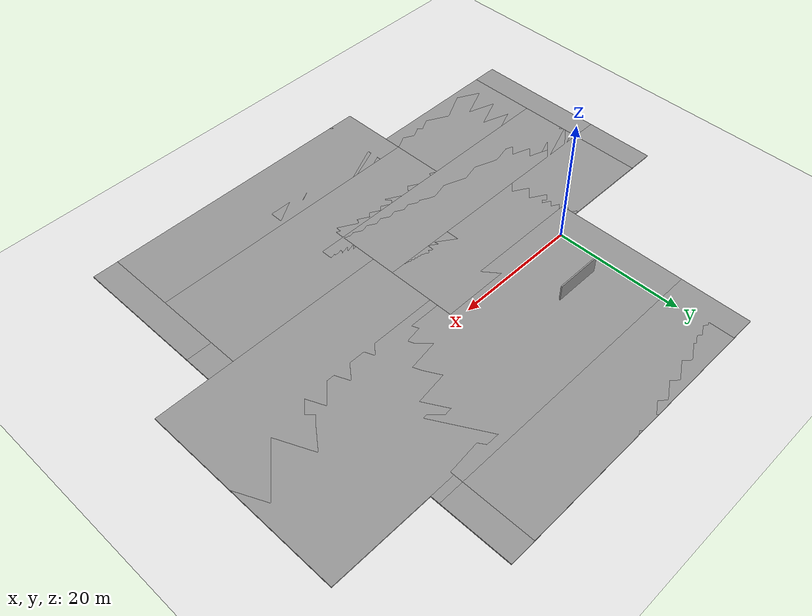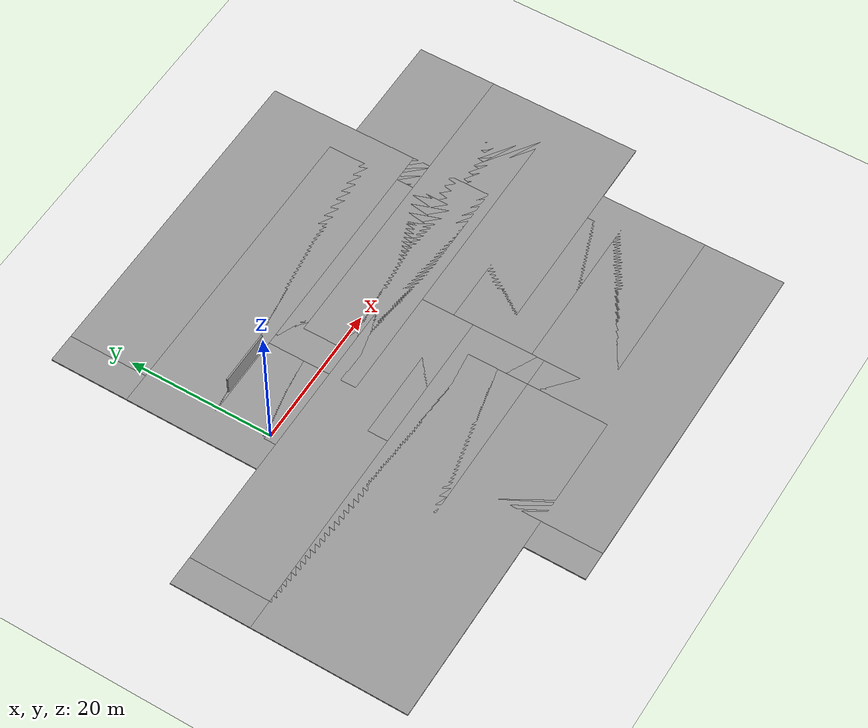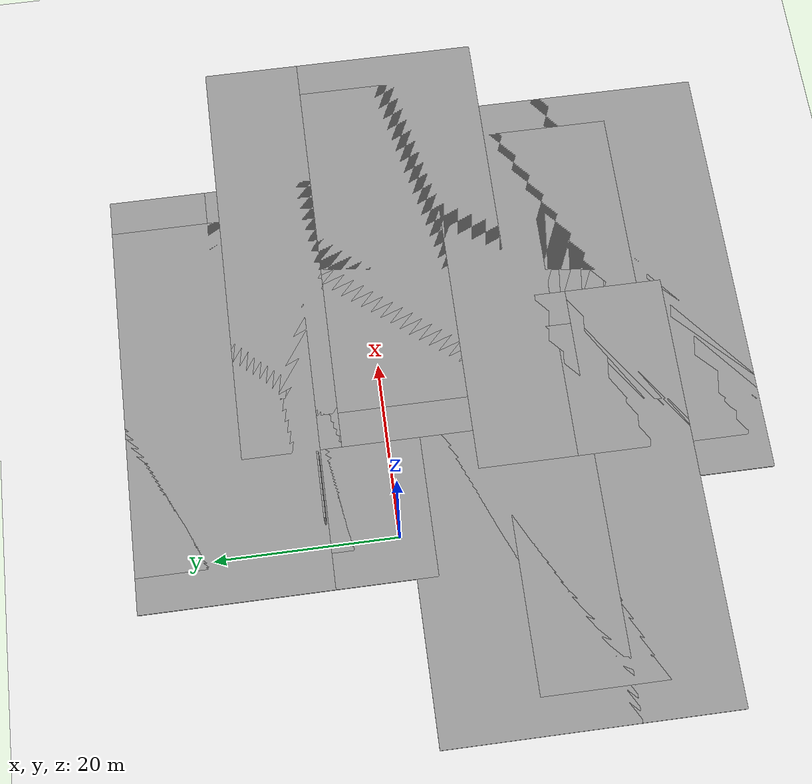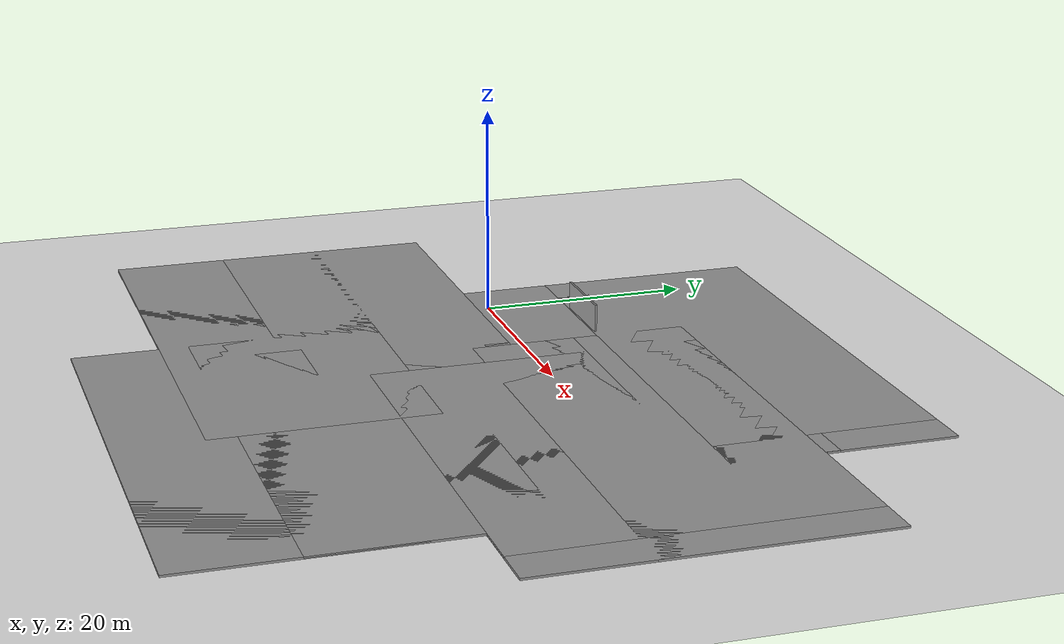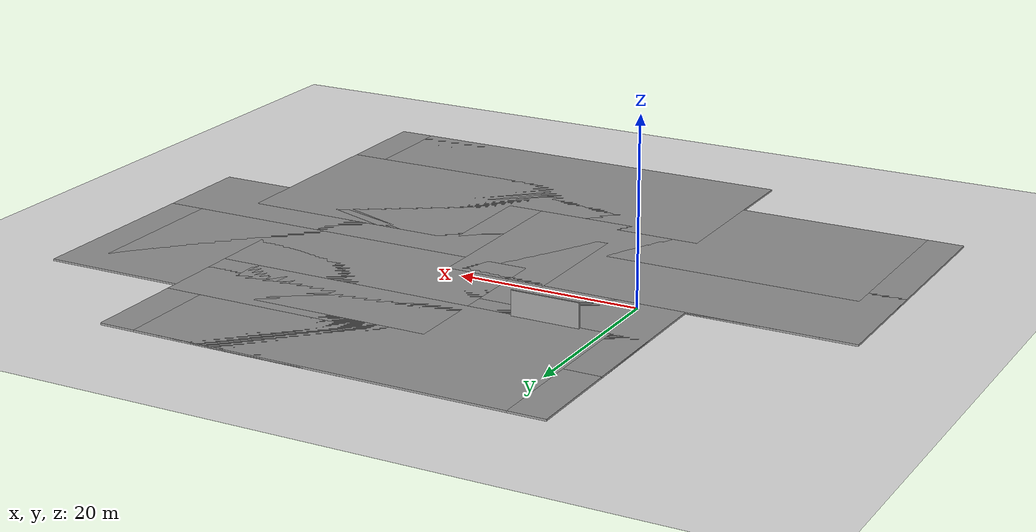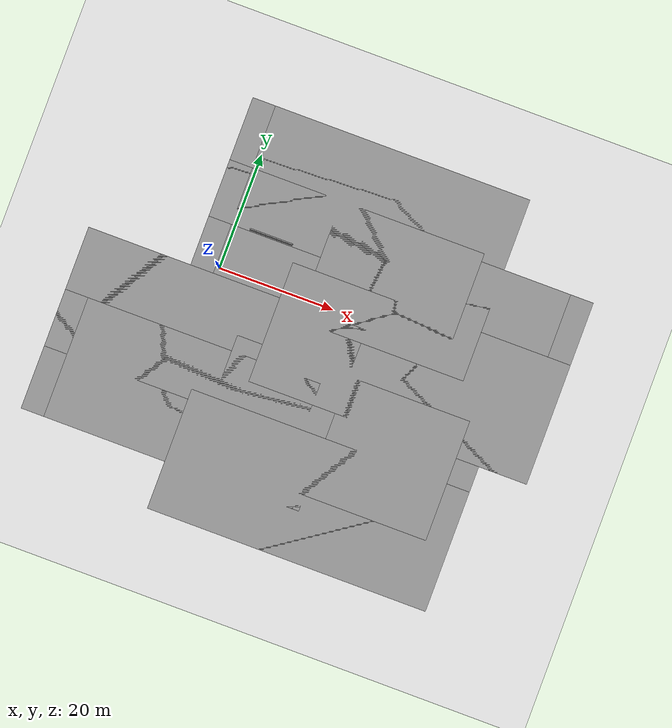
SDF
<sdf version="1.6">
 <world name="default">
  <model name="ground_plane">
   <static>1</static>
   <link name="link">
    <collision name="collision">
     <geometry><plane><normal>0 0 1</normal><size>100 100</size></plane></geometry>
     <surface><friction><ode><mu>100</mu><mu2>50</mu2></ode></friction></surface>
    </collision>
    <visual name="visual">
     <cast_shadows>0</cast_shadows>
     <geometry><plane><normal>0 0 1</normal><size>100 100</size></plane></geometry>
     <material>
      <script><uri>file://media/materials/scripts/gazebo.material</uri><name>Gazebo/White</name></script>
     </material>
    </visual>
    <velocity_decay><linear>0</linear><angular>0</angular></velocity_decay>
   </link>
  </model>
  <model name="grey_wall">
   <static>1</static>
   <link name="link">
    <pose>0 0 1.4 0 -0 0</pose>
    <collision name="collision"><geometry><box><size>7.5 0.2 2.8</size></box></geometry></collision>
    <visual name="visual">
     <cast_shadows>0</cast_shadows>
     <geometry><box><size>7.5 0.2 2.8</size></box></geometry>
     <material>
      <script>
       <uri>model://grey_wall/materials/scripts</uri>
       <uri>model://grey_wall/materials/textures</uri>
       <name>vrc/grey_wall</name>
      </script>
     </material>
    </visual>
    <velocity_decay><linear>0</linear><angular>0</angular></velocity_decay>
   </link>
   <pose>6.26548 7.71769 0 0 -0 0</pose>
  </model>
  <model name="ground_plane2_clone">
   <link name="link">
    <inertial>
     <mass>1</mass>
     <inertia><ixx>1</ixx><ixy>0</ixy><ixz>0</ixz><iyy>1</iyy><iyz>0</iyz><izz>1</izz></inertia>
    </inertial>
    <visual name="visual_1">
     <pose>-2 5.5 0 0 -0 0</pose>
     <cast_shadows>0</cast_shadows>
     <geometry><box><size>45 21 0.2</size></box></geometry>
     <material>
      <script>
       <uri>file://media/materials/scripts/gazebo.material</uri>
       <name>Gazebo/Gray</name>
       <name>vrc/mud</name>
      </script>
      <shader type="pixel"><normal_map>__default__</normal_map></shader>
      <ambient>0.5 0.5 0.5 1</ambient>
      <diffuse>0.5 0.5 0.5 1</diffuse>
      <specular>0.2 0.2 0.2 1</specular>
      <emissive>0 0 0 1</emissive>
     </material>
    </visual>
    <visual name="visual_3">
     <pose>2 -5.5 0 0 -0 0</pose>
     <cast_shadows>0</cast_shadows>
     <geometry><box><size>45 21 0.2</size></box></geometry>
     <material>
      <script>
       <uri>file://media/materials/scripts/gazebo.material</uri>
       <name>Gazebo/Gray</name>
       <name>vrc/mud</name>
      </script>
      <shader type="pixel"><normal_map>__default__</normal_map></shader>
      <ambient>0.5 0.5 0.5 1</ambient>
      <diffuse>0.5 0.5 0.5 1</diffuse>
      <specular>0.2 0.2 0.2 1</specular>
      <emissive>0 0 0 1</emissive>
     </material>
    </visual>
    <visual name="visual_2">
     <pose>2 5.5 0 0 -0 0</pose>
     <cast_shadows>0</cast_shadows>
     <geometry><box><size>45 21 0.2</size></box></geometry>
     <material>
      <script>
       <uri>file://media/materials/scripts/gazebo.material</uri>
       <name>Gazebo/Gray</name>
       <name>vrc/mud</name>
      </script>
      <shader type="pixel"><normal_map>__default__</normal_map></shader>
      <ambient>0.5 0.5 0.5 1</ambient>
      <diffuse>0.5 0.5 0.5 1</diffuse>
      <specular>0.2 0.2 0.2 1</specular>
      <emissive>0 0 0 1</emissive>
     </material>
    </visual>
    <visual name="visual_4">
     <pose>-2 -5.5 0 0 -0 0</pose>
     <cast_shadows>0</cast_shadows>
     <geometry><box><size>45 21 0.2</size></box></geometry>
     <material>
      <script>
       <uri>file://media/materials/scripts/gazebo.material</uri>
       <name>Gazebo/Gray</name>
       <name>vrc/mud</name>
      </script>
      <shader type="pixel"><normal_map>__default__</normal_map></shader>
      <ambient>0.5 0.5 0.5 1</ambient>
      <diffuse>0.5 0.5 0.5 1</diffuse>
      <specular>0.2 0.2 0.2 1</specular>
      <emissive>0 0 0 1</emissive>
     </material>
    </visual>
    <collision name="collision">
     <pose>0 0.2 0 0 -0 0</pose>
     <geometry><box><size>49 32 0.2</size></box></geometry>
     <surface>
      <friction>
       <ode><mu>1</mu><mu2>1</mu2><fdir1>0 0 0</fdir1><slip1>0</slip1><slip2>0</slip2></ode>
       <torsional>
        <coefficient>1</coefficient>
        <patch_radius>0</patch_radius>
        <surface_radius>0</surface_radius>
        <use_patch_radius>1</use_patch_radius>
        <ode><slip>0</slip></ode>
       </torsional>
      </friction>
      <bounce><restitution_coefficient>0</restitution_coefficient><threshold>1e+06</threshold></bounce>
      <contact>
       <collide_without_contact>0</collide_without_contact>
       <collide_without_contact_bitmask>1</collide_without_contact_bitmask>
       <collide_bitmask>1</collide_bitmask>
       <ode>
        <soft_cfm>0</soft_cfm>
        <soft_erp>0.2</soft_erp>
        <kp>1e+13</kp>
        <kd>1</kd>
        <max_vel>0.01</max_vel>
        <min_depth>0</min_depth>
       </ode>
       <bullet>
        <split_impulse>1</split_impulse>
        <split_impulse_penetration_threshold>-0.01</split_impulse_penetration_threshold>
        <soft_cfm>0</soft_cfm>
        <soft_erp>0.2</soft_erp>
        <kp>1e+13</kp>
        <kd>1</kd>
       </bullet>
      </contact>
     </surface>
    </collision>
   </link>
   <static>1</static>
   <pose>35.5273 0.081065 0.01 0 -0 0</pose>
  </model>
  <model name="ground_plane2_clone_0">
   <link name="link">
    <inertial>
     <mass>1</mass>
     <inertia><ixx>1</ixx><ixy>0</ixy><ixz>0</ixz><iyy>1</iyy><iyz>0</iyz><izz>1</izz></inertia>
    </inertial>
    <visual name="visual_1">
     <pose>-2 5.5 0 0 -0 0</pose>
     <cast_shadows>0</cast_shadows>
     <geometry><box><size>45 21 0.2</size></box></geometry>
     <material>
      <script>
       <uri>file://media/materials/scripts/gazebo.material</uri>
       <name>Gazebo/Gray</name>
       <name>vrc/mud</name>
      </script>
      <shader type="pixel"><normal_map>__default__</normal_map></shader>
      <ambient>0.5 0.5 0.5 1</ambient>
      <diffuse>0.5 0.5 0.5 1</diffuse>
      <specular>0.2 0.2 0.2 1</specular>
      <emissive>0 0 0 1</emissive>
     </material>
    </visual>
    <visual name="visual_3">
     <pose>2 -5.5 0 0 -0 0</pose>
     <cast_shadows>0</cast_shadows>
     <geometry><box><size>45 21 0.2</size></box></geometry>
     <material>
      <script>
       <uri>file://media/materials/scripts/gazebo.material</uri>
       <name>Gazebo/Gray</name>
       <name>vrc/mud</name>
      </script>
      <shader type="pixel"><normal_map>__default__</normal_map></shader>
      <ambient>0.5 0.5 0.5 1</ambient>
      <diffuse>0.5 0.5 0.5 1</diffuse>
      <specular>0.2 0.2 0.2 1</specular>
      <emissive>0 0 0 1</emissive>
     </material>
    </visual>
    <visual name="visual_2">
     <pose>2 5.5 0 0 -0 0</pose>
     <cast_shadows>0</cast_shadows>
     <geometry><box><size>45 21 0.2</size></box></geometry>
     <material>
      <script>
       <uri>file://media/materials/scripts/gazebo.material</uri>
       <name>Gazebo/Gray</name>
       <name>vrc/mud</name>
      </script>
      <shader type="pixel"><normal_map>__default__</normal_map></shader>
      <ambient>0.5 0.5 0.5 1</ambient>
      <diffuse>0.5 0.5 0.5 1</diffuse>
      <specular>0.2 0.2 0.2 1</specular>
      <emissive>0 0 0 1</emissive>
     </material>
    </visual>
    <visual name="visual_4">
     <pose>-2 -5.5 0 0 -0 0</pose>
     <cast_shadows>0</cast_shadows>
     <geometry><box><size>45 21 0.2</size></box></geometry>
     <material>
      <script>
       <uri>file://media/materials/scripts/gazebo.material</uri>
       <name>Gazebo/Gray</name>
       <name>vrc/mud</name>
      </script>
      <shader type="pixel"><normal_map>__default__</normal_map></shader>
      <ambient>0.5 0.5 0.5 1</ambient>
      <diffuse>0.5 0.5 0.5 1</diffuse>
      <specular>0.2 0.2 0.2 1</specular>
      <emissive>0 0 0 1</emissive>
     </material>
    </visual>
    <collision name="collision">
     <pose>0 0.2 0 0 -0 0</pose>
     <geometry><box><size>49 32 0.2</size></box></geometry>
     <surface>
      <friction>
       <ode><mu>1</mu><mu2>1</mu2><fdir1>0 0 0</fdir1><slip1>0</slip1><slip2>0</slip2></ode>
       <torsional>
        <coefficient>1</coefficient>
        <patch_radius>0</patch_radius>
        <surface_radius>0</surface_radius>
        <use_patch_radius>1</use_patch_radius>
        <ode><slip>0</slip></ode>
       </torsional>
      </friction>
      <bounce><restitution_coefficient>0</restitution_coefficient><threshold>1e+06</threshold></bounce>
      <contact>
       <collide_without_contact>0</collide_without_contact>
       <collide_without_contact_bitmask>1</collide_without_contact_bitmask>
       <collide_bitmask>1</collide_bitmask>
       <ode>
        <soft_cfm>0</soft_cfm>
        <soft_erp>0.2</soft_erp>
        <kp>1e+13</kp>
        <kd>1</kd>
        <max_vel>0.01</max_vel>
        <min_depth>0</min_depth>
       </ode>
       <bullet>
        <split_impulse>1</split_impulse>
        <split_impulse_penetration_threshold>-0.01</split_impulse_penetration_threshold>
        <soft_cfm>0</soft_cfm>
        <soft_erp>0.2</soft_erp>
        <kp>1e+13</kp>
        <kd>1</kd>
       </bullet>
      </contact>
     </surface>
    </collision>
   </link>
   <static>1</static>
   <pose>1.75668 -17.1641 0.01 0 -0 0</pose>
  </model>
  <model name="ground_plane2_clone_3">
   <link name="link">
    <inertial>
     <mass>1</mass>
     <inertia><ixx>1</ixx><ixy>0</ixy><ixz>0</ixz><iyy>1</iyy><iyz>0</iyz><izz>1</izz></inertia>
    </inertial>
    <visual name="visual_1">
     <pose>-2 5.5 0 0 -0 0</pose>
     <cast_shadows>0</cast_shadows>
     <geometry><box><size>45 21 0.2</size></box></geometry>
     <material>
      <script>
       <uri>file://media/materials/scripts/gazebo.material</uri>
       <name>Gazebo/Gray</name>
       <name>vrc/mud</name>
      </script>
      <shader type="pixel"><normal_map>__default__</normal_map></shader>
      <ambient>0.5 0.5 0.5 1</ambient>
      <diffuse>0.5 0.5 0.5 1</diffuse>
      <specular>0.2 0.2 0.2 1</specular>
      <emissive>0 0 0 1</emissive>
     </material>
    </visual>
    <visual name="visual_3">
     <pose>2 -5.5 0 0 -0 0</pose>
     <cast_shadows>0</cast_shadows>
     <geometry><box><size>45 21 0.2</size></box></geometry>
     <material>
      <script>
       <uri>file://media/materials/scripts/gazebo.material</uri>
       <name>Gazebo/Gray</name>
       <name>vrc/mud</name>
      </script>
      <shader type="pixel"><normal_map>__default__</normal_map></shader>
      <ambient>0.5 0.5 0.5 1</ambient>
      <diffuse>0.5 0.5 0.5 1</diffuse>
      <specular>0.2 0.2 0.2 1</specular>
      <emissive>0 0 0 1</emissive>
     </material>
    </visual>
    <visual name="visual_2">
     <pose>2 5.5 0 0 -0 0</pose>
     <cast_shadows>0</cast_shadows>
     <geometry><box><size>45 21 0.2</size></box></geometry>
     <material>
      <script>
       <uri>file://media/materials/scripts/gazebo.material</uri>
       <name>Gazebo/Gray</name>
       <name>vrc/mud</name>
      </script>
      <shader type="pixel"><normal_map>__default__</normal_map></shader>
      <ambient>0.5 0.5 0.5 1</ambient>
      <diffuse>0.5 0.5 0.5 1</diffuse>
      <specular>0.2 0.2 0.2 1</specular>
      <emissive>0 0 0 1</emissive>
     </material>
    </visual>
    <visual name="visual_4">
     <pose>-2 -5.5 0 0 -0 0</pose>
     <cast_shadows>0</cast_shadows>
     <geometry><box><size>45 21 0.2</size></box></geometry>
     <material>
      <script>
       <uri>file://media/materials/scripts/gazebo.material</uri>
       <name>Gazebo/Gray</name>
       <name>vrc/mud</name>
      </script>
      <shader type="pixel"><normal_map>__default__</normal_map></shader>
      <ambient>0.5 0.5 0.5 1</ambient>
      <diffuse>0.5 0.5 0.5 1</diffuse>
      <specular>0.2 0.2 0.2 1</specular>
      <emissive>0 0 0 1</emissive>
     </material>
    </visual>
    <collision name="collision">
     <pose>0 0.2 0 0 -0 0</pose>
     <geometry><box><size>49 32 0.2</size></box></geometry>
     <surface>
      <friction>
       <ode><mu>1</mu><mu2>1</mu2><fdir1>0 0 0</fdir1><slip1>0</slip1><slip2>0</slip2></ode>
       <torsional>
        <coefficient>1</coefficient>
        <patch_radius>0</patch_radius>
        <surface_radius>0</surface_radius>
        <use_patch_radius>1</use_patch_radius>
        <ode><slip>0</slip></ode>
       </torsional>
      </friction>
      <bounce><restitution_coefficient>0</restitution_coefficient><threshold>1e+06</threshold></bounce>
      <contact>
       <collide_without_contact>0</collide_without_contact>
       <collide_without_contact_bitmask>1</collide_without_contact_bitmask>
       <collide_bitmask>1</collide_bitmask>
       <ode>
        <soft_cfm>0</soft_cfm>
        <soft_erp>0.2</soft_erp>
        <kp>1e+13</kp>
        <kd>1</kd>
        <max_vel>0.01</max_vel>
        <min_depth>0</min_depth>
       </ode>
       <bullet>
        <split_impulse>1</split_impulse>
        <split_impulse_penetration_threshold>-0.01</split_impulse_penetration_threshold>
        <soft_cfm>0</soft_cfm>
        <soft_erp>0.2</soft_erp>
        <kp>1e+13</kp>
        <kd>1</kd>
       </bullet>
      </contact>
     </surface>
    </collision>
   </link>
   <static>1</static>
   <pose>19.7742 12.4683 0.01 0 -0 0</pose>
  </model>
  <model name="ground_plane2_clone_4">
   <link name="link">
    <inertial>
     <mass>1</mass>
     <inertia><ixx>1</ixx><ixy>0</ixy><ixz>0</ixz><iyy>1</iyy><iyz>0</iyz><izz>1</izz></inertia>
    </inertial>
    <visual name="visual_1">
     <pose>-2 5.5 0 0 -0 0</pose>
     <cast_shadows>0</cast_shadows>
     <geometry><box><size>45 21 0.2</size></box></geometry>
     <material>
      <script>
       <uri>file://media/materials/scripts/gazebo.material</uri>
       <name>Gazebo/Gray</name>
       <name>vrc/mud</name>
      </script>
      <shader type="pixel"><normal_map>__default__</normal_map></shader>
      <ambient>0.5 0.5 0.5 1</ambient>
      <diffuse>0.5 0.5 0.5 1</diffuse>
      <specular>0.2 0.2 0.2 1</specular>
      <emissive>0 0 0 1</emissive>
     </material>
    </visual>
    <visual name="visual_3">
     <pose>2 -5.5 0 0 -0 0</pose>
     <cast_shadows>0</cast_shadows>
     <geometry><box><size>45 21 0.2</size></box></geometry>
     <material>
      <script>
       <uri>file://media/materials/scripts/gazebo.material</uri>
       <name>Gazebo/Gray</name>
       <name>vrc/mud</name>
      </script>
      <shader type="pixel"><normal_map>__default__</normal_map></shader>
      <ambient>0.5 0.5 0.5 1</ambient>
      <diffuse>0.5 0.5 0.5 1</diffuse>
      <specular>0.2 0.2 0.2 1</specular>
      <emissive>0 0 0 1</emissive>
     </material>
    </visual>
    <visual name="visual_2">
     <pose>2 5.5 0 0 -0 0</pose>
     <cast_shadows>0</cast_shadows>
     <geometry><box><size>45 21 0.2</size></box></geometry>
     <material>
      <script>
       <uri>file://media/materials/scripts/gazebo.material</uri>
       <name>Gazebo/Gray</name>
       <name>vrc/mud</name>
      </script>
      <shader type="pixel"><normal_map>__default__</normal_map></shader>
      <ambient>0.5 0.5 0.5 1</ambient>
      <diffuse>0.5 0.5 0.5 1</diffuse>
      <specular>0.2 0.2 0.2 1</specular>
      <emissive>0 0 0 1</emissive>
     </material>
    </visual>
    <visual name="visual_4">
     <pose>-2 -5.5 0 0 -0 0</pose>
     <cast_shadows>0</cast_shadows>
     <geometry><box><size>45 21 0.2</size></box></geometry>
     <material>
      <script>
       <uri>file://media/materials/scripts/gazebo.material</uri>
       <name>Gazebo/Gray</name>
       <name>vrc/mud</name>
      </script>
      <shader type="pixel"><normal_map>__default__</normal_map></shader>
      <ambient>0.5 0.5 0.5 1</ambient>
      <diffuse>0.5 0.5 0.5 1</diffuse>
      <specular>0.2 0.2 0.2 1</specular>
      <emissive>0 0 0 1</emissive>
     </material>
    </visual>
    <collision name="collision">
     <pose>0 0.2 0 0 -0 0</pose>
     <geometry><box><size>49 32 0.2</size></box></geometry>
     <surface>
      <friction>
       <ode><mu>1</mu><mu2>1</mu2><fdir1>0 0 0</fdir1><slip1>0</slip1><slip2>0</slip2></ode>
       <torsional>
        <coefficient>1</coefficient>
        <patch_radius>0</patch_radius>
        <surface_radius>0</surface_radius>
        <use_patch_radius>1</use_patch_radius>
        <ode><slip>0</slip></ode>
       </torsional>
      </friction>
      <bounce><restitution_coefficient>0</restitution_coefficient><threshold>1e+06</threshold></bounce>
      <contact>
       <collide_without_contact>0</collide_without_contact>
       <collide_without_contact_bitmask>1</collide_without_contact_bitmask>
       <collide_bitmask>1</collide_bitmask>
       <ode>
        <soft_cfm>0</soft_cfm>
        <soft_erp>0.2</soft_erp>
        <kp>1e+13</kp>
        <kd>1</kd>
        <max_vel>0.01</max_vel>
        <min_depth>0</min_depth>
       </ode>
       <bullet>
        <split_impulse>1</split_impulse>
        <split_impulse_penetration_threshold>-0.01</split_impulse_penetration_threshold>
        <soft_cfm>0</soft_cfm>
        <soft_erp>0.2</soft_erp>
        <kp>1e+13</kp>
        <kd>1</kd>
       </bullet>
      </contact>
     </surface>
    </collision>
   </link>
   <static>1</static>
   <pose>27.1187 -25.4007 0.01 0 -0 0</pose>
  </model>
 </world>
</sdf>
